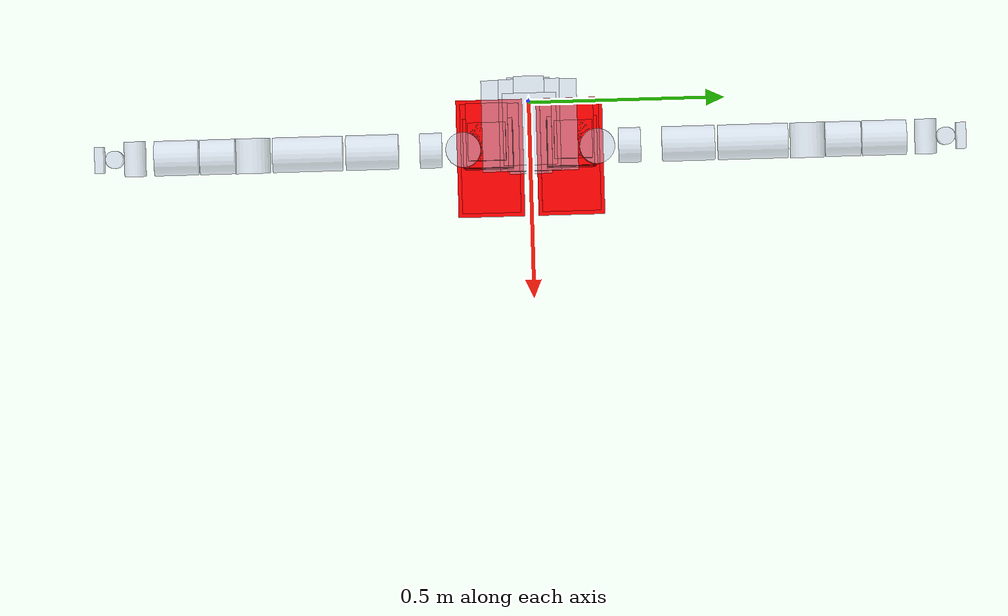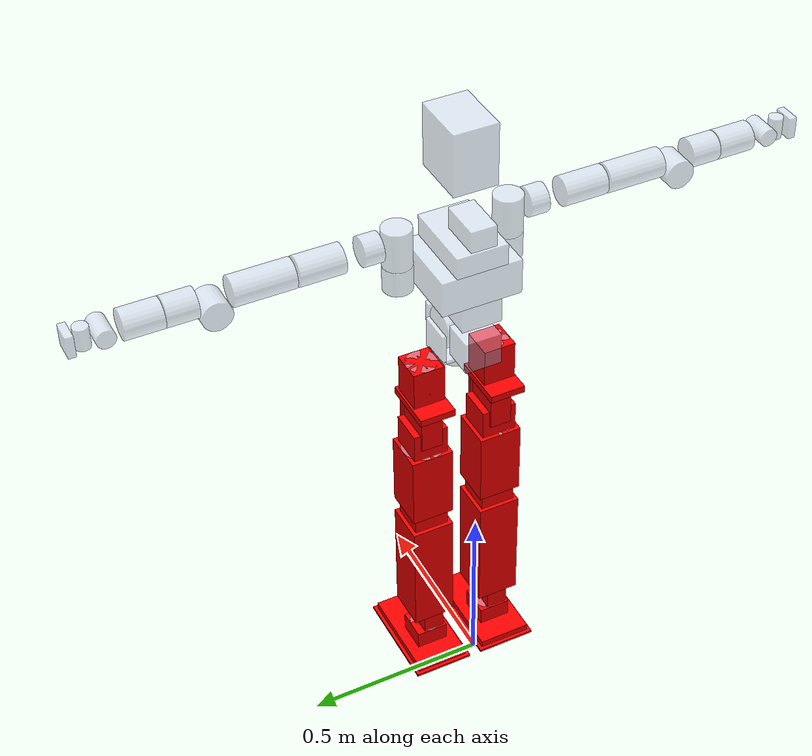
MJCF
<?xml version='1.0' encoding='utf-8'?>
<mujoco model="dyros_tocabi_description">
    <compiler angle="radian" balanceinertia="true" />
    <default>
        <default class="viz">
            <geom contype="0" conaffinity="0" group="1" type="mesh" rgba="1. 0. 0. 1" />
            </default>
        <default class="cls">
            <geom group="2" rgba="0.79216 0.81961 0.93333 0.5" />
            </default>
        <default class="shg20_100_2so">
            <joint />
            </default>
        <default class="shd20_100_2sh">
            <joint />
            </default>
        <default class="shg25_100_2so">
            <joint />
            </default>
        <default class="shg17_100_2so">
            <joint />
            </default>
        <default class="shg14_100_2so">
            <joint />
            </default>
        <default class="csf_11_100_2xh_f">
            <joint />
            </default>
        </default>
    <option timestep="0.0005" />
    <visual>
        <quality shadowsize="4096" />
        <map stiffness="10" znear="0.05" zfar="50"/>
        <global fovy="20" />
    </visual>
    <asset>
        <mesh name="Pelvis_link" file="../meshes/Pelvis_link2.STL" scale="0.001 0.001 0.001" />
        <mesh name="HipRoll_R_link" file="../meshes/HipRoll_R_link.STL" />
        <mesh name="HipCenter_R_Link" file="../meshes/HipCenter_R_Link.STL" />
        <mesh name="Thigh_R_Link" file="../meshes/Thigh_R_Link.STL" />
        <mesh name="Knee_R_Link" file="../meshes/Knee_R_Link.STL" />
        <mesh name="AnkleCenter_R_Link" file="../meshes/AnkleCenter_R_Link.STL" />
        <mesh name="AnkleRoll_R_Link" file="../meshes/AnkleRoll_R_Link.STL" />
        <mesh name="HipRoll_L_Link" file="../meshes/HipRoll_L_Link.STL" />
        <mesh name="HipCenter_L_Link" file="../meshes/HipCenter_L_Link.STL" />
        <mesh name="Thigh_L_Link" file="../meshes/Thigh_L_Link.STL" />
        <mesh name="Knee_L_Link" file="../meshes/Knee_L_Link.STL" />
        <mesh name="AnkleCenter_L_Link" file="../meshes/AnkleCenter_L_Link.STL" />
        <mesh name="AnkleRoll_L_Link" file="../meshes/AnkleRoll_L_Link.STL" />
        <mesh name="waist1" file="../meshes/waistyaw.STL" scale="0.001 0.001 0.001" />
        <mesh name="waist2" file="../meshes/waist2.STL" />
        <mesh name="upperbody" file="../meshes/upperbody.STL" />
        <mesh name="R_shoulder1" file="../meshes/R_shoulder1.STL" />
        <mesh name="R_shoulder2" file="../meshes/R_shoulder2.STL" />
        <mesh name="R_shoulder3" file="../meshes/R_shoulder3.STL" />
        <mesh name="R_arm" file="../meshes/R_arm.STL" />
        <mesh name="R_elbow" file="../meshes/R_elbow.STL" />
        <mesh name="R_forearm" file="../meshes/R_forearm.STL" />
        <mesh name="R_wrist1" file="../meshes/R_wrist1.STL" />
        <mesh name="L_shoulder1" file="../meshes/L_shoulder1.STL" />
        <mesh name="L_shoulder2" file="../meshes/L_shoulder2.STL" />
        <mesh name="L_shoulder3" file="../meshes/L_shoulder3.STL" />
        <mesh name="L_arm" file="../meshes/L_arm.STL" />
        <mesh name="L_elbow" file="../meshes/L_elbow.STL" />
        <mesh name="L_forearm" file="../meshes/L_forearm.STL" />
        <mesh name="L_wrist1" file="../meshes/L_wrist1.STL" />
        <mesh name="neck" file="../meshes/neck.STL" />
        <mesh name="head" file="../meshes/head.STL" scale="0.001 0.001 0.001" />
        <mesh name="hand" file="../meshes/wrist2joint.STL" scale="0.001 0.001 0.001" />
        <mesh name="Foot_Link" file="../meshes/Foot_Link.STL" />

        <texture type="skybox" builtin="gradient" width="128" height="128" rgb1="0.6 0.8 1" rgb2="0.0 0.0 0.0"/>
        <texture name="texplane" type="2d" builtin="checker" rgb1="0.9 0.9 0.9" rgb2="0.7 0.7 0.7" width="512" height="512"/>
        <material name="MatPlane" reflectance="0.9" texture="texplane" texrepeat="5 5" texuniform="true" shininess="1"/>

        <material name="MatPlane2" reflectance="0.3" />
        </asset>
    <worldbody>
        <geom name="ground" type="plane" pos="0 0 0" size="10 10 .05" rgba="0.7 0.6 0.5 1" material="MatPlane" group="3"/>
        <light directional="true" diffuse=".8 .8 .8" pos="0 0 10" dir="0 0 -10"/>
        <light directional="true" diffuse=".5 .5 .5" pos="10 0 0" dir="-10 0 0"/>
        <body euler="0 0 0" name="base_link" pos="0.0 0 0.929869">
            <joint armature="0" damping="0" frictionloss="0" limited="false" name="virtual_joint" stiffness="0" type="free" />
            <inertial fullinertia="0.113284 0.0585 0.1422 -0.000116 -0.0056 -0.0" mass="12.9" pos="0.0585 0.03 0.0431" />
            <geom class="cls" pos="0.11 0.1025 0.05" size="0.045 0.055" type="cylinder" />
            <geom class="viz" pos="0.11 0.1025 0.05" size="0.045 0.045 0.055" type="box" />
            <geom class="cls" pos="0.11 -0.1025 0.05" size="0.045 0.055" type="cylinder" />
            <geom class="viz" pos="0.11 -0.1025 0.05" size="0.045 0.045 0.055" type="box" />
            <site group="4" name="Pelvis_IMU" rgba=".1 .1 .9 1" size="0.005 0.005" type="cylinder" />
            <body name="L_HipRoll_Link" pos="0.11 0.1025 -0.1025">
                <inertial fullinertia="0.01821 0.03121 0.2928 -1.676E-07 -0.0007745 -4.53E-09" mass="2.679" pos="-0.06477 0 0.05149" />
                <joint axis="0 0 1" class="shg20_100_2so" limited="true" name="L_HipYaw_Joint" pos="0 0 0" range="-3.14 3.14" />
                <geom class="cls" pos="-0.016 0 0.085" size="0.077 0.05 0.01" type="box" />
                <geom class="viz" pos="-0.016 0 0.085" size="0.077 0.05 0.01" type="box" />
                <geom class="cls" pos="0.055 0 0.0275" size="0.006 0.036 0.0475" type="box" />
                <geom class="viz" pos="0.055 0 0.0275" size="0.006 0.036 0.0475" type="box" />
                <body name="L_HipCenter_Link" pos="0 0 0">
                    <inertial fullinertia="0.3553 0.009161 0.00876 1.725E-08 -3.236E-06 -4.778E-06" mass="2.67" pos="-0.04801 0.0022 2e-05" />
                    <joint axis="1 0 0" class="shg20_100_2so" limited="true" name="L_HipRoll_Joint" pos="0 0 0" range="-3.14 3.14" />
                    <geom class="viz" pos="-0.0045 0 0" size="0.05225 0.03 0.0475" type="box" />
                    <body name="L_Thigh_Link" pos="0 0 0">
                        <inertial fullinertia="0.0794 0.080 0.009967 4.1E-05 0.000727 -0.001537" mass="5.65" pos="-0.0003 0.00032 -0.247" />
                        <joint axis="0 1 0" class="shg20_100_2so" limited="true" name="L_HipPitch_Joint" pos="0 0 0" range="-3.14 3.14" />
                        <geom class="viz" pos="0 0 -0.175" size="0.049 0.049 0.175" type="box" />
                        <geom class="cls" pos="0 0 -0.1923" size="0.06 0.1085" type="cylinder" />
                        <geom class="viz" pos="0 0 -0.1923" size="0.06 0.06 0.1085" type="box" />
                        <body name="L_Knee_Link" pos="0 0 -0.35">
                            <inertial fullinertia="0.1506 0.5588 0.007451 2.887E-05 0.002607 0.001486" mass="2.614" pos="0.007 0.00214 -0.1686" />
                            <joint axis="0 1 0" class="shg20_100_2so" limited="true" name="L_Knee_Joint" pos="0 0 0" range="-3.14 3.14" />
                            <geom class="viz" pos="0 0 -0.175" size="0.06 0.06 0.175" type="box" />
                            <body name="L_AnkleCenter_Link" pos="0 0 -0.35">
                                <inertial fullinertia="0.003548 0.004046 0.00397 4.0E-06 2.222E-06 5.0E-06" mass="2.833" pos="-0.00228 -0.0006 0.0" />
                                <joint axis="0 1 0" class="shg20_100_2so" limited="true" name="L_AnklePitch_Joint" pos="0 0 0" range="-3.14 3.14" />
                                <geom class="viz" pos="-0.0045 0 -0.010" size="0.05225 0.03 0.0425" type="box" />
                                <body name="L_AnkleRoll_Link" pos="0 0 0">
                                    <inertial fullinertia="0.003951 0.008642 0.007223 2e-05 0.0019 -5.435E-06" mass="2.1" pos="-0.0746 0.0 -0.0096" />
                                    <joint axis="1 0 0" class="shd20_100_2sh" limited="true" name="L_AnkleRoll_Joint" pos="0 0 0" range="-3.14 3.14" />
                                    <body name="L_Foot_Redundant_Link" pos="0 0 0">
                                        <inertial fullinertia=".000001 .000001 .000001 0 0 0" mass="0.00001" pos="-0. 0.0 -0" />
                                        <geom class="cls" pos="0.0 0 -0.10" size="0.045 0.02625" type="cylinder" />
                                        <geom class="cls" pos="0.03 0 -0.141" size="0.14 0.075 0.01" type="box" />
                                        <geom class="viz" pos="0.03 0 -0.141" size="0.14 0.075 0.01" type="box" />
                                        <geom class="viz" pos="0.0 0 -0.10" size="0.045 0.045 0.02625" type="box" />
                                        </body>
                                    <body name="L_Foot_Link" pos="0 0 0">
                                        <inertial fullinertia="0.003386409 0.012600125 0.014296 1.1237E-05 -0.000526477 -1.976E-06" mass="2.35" pos="0.016 0.00008 -0.1206" />
                                        <geom class="cls" pos="0.03 0 -0.155" size="0.15 0.085 0.0035" type="box" />
                                        <geom class="viz" pos="0.03 0 -0.155" size="0.15 0.085 0.0035" type="box" />
                                        </body>
                                    </body>
                                </body>
                            </body>
                        </body>
                    </body>
                </body>
            <body name="R_HipRoll_Link" pos="0.11 -0.1025 -0.1025">
                <inertial fullinertia="0.01821 0.03121 0.2928 -1.676E-07 -0.0007745 -4.53E-09" mass="2.679" pos="-0.06477 0 0.05149" />
                <joint axis="0 0 1" class="shg20_100_2so" limited="true" name="R_HipYaw_Joint" pos="0 0 0" range="-3.14 3.14" />
                <geom class="cls" pos="-0.016 0 0.085" size="0.077 0.05 0.01" type="box" />
                <geom class="viz" pos="-0.016 0 0.085" size="0.077 0.05 0.01" type="box" />
                <geom class="cls" pos="0.055 0 0.0275" size="0.006 0.036 0.0475" type="box" />
                <geom class="viz" pos="0.055 0 0.0275" size="0.006 0.036 0.0475" type="box" />
                <body name="R_HipCenter_Link" pos="0 0 0">
                    <inertial fullinertia="0.3553 0.009161 0.00876 1.725E-08 -3.236E-06 -4.778E-06" mass="2.67" pos="-0.04801 -0.0022 2e-05" />
                    <joint axis="1 0 0" class="shg20_100_2so" limited="true" name="R_HipRoll_Joint" pos="0 0 0" range="-3.14 3.14" />
                    <geom class="viz" pos="-0.0045 0 0" size="0.05225 0.03 0.0475" type="box" />
                    <body name="R_Thigh_Link" pos="0 0 0">
                        <inertial fullinertia="0.0794 0.080 0.009967 4.1E-05 0.000727 0.001537" mass="5.65" pos="-0.0003 -0.00032 -0.247" />
                        <joint axis="0 1 0" class="shg20_100_2so" limited="true" name="R_HipPitch_Joint" pos="0 0 0" range="-3.14 3.14" />
                        <geom class="viz" pos="0 0 -0.175" size="0.049 0.049 0.175" type="box" />
                        <geom class="cls" pos="0 0 -0.1923" size="0.06 0.1085" type="cylinder" />
                        <geom class="viz" pos="0 0 -0.1923" size="0.06 0.06 0.1085" type="box" />
                        <body name="R_Knee_Link" pos="0 0 -0.35">
                            <inertial fullinertia="0.1506 0.5588 0.007451 -2.887E-05 -0.002607 -0.001486" mass="2.614" pos="0.007 0.00214 -0.1686" />
                            <joint axis="0 1 0" class="shg20_100_2so" limited="true" name="R_Knee_Joint" pos="0 0 0" range="-3.14 3.14" />
                            <geom class="viz" pos="0 0 -0.175" size="0.06 0.06 0.175" type="box" />
                            <body name="R_AnkleCenter_Link" pos="0 0 -0.35">
                                <inertial fullinertia="0.003548 0.004046 0.00397 -4.0E-06 -2.222E-06 5.0E-06" mass="2.833" pos="-0.00228 0.0006 0.0" />
                                <joint axis="0 1 0" class="shg20_100_2so" limited="true" name="R_AnklePitch_Joint" pos="0 0 0" range="-3.14 3.14" />
                                <geom class="viz" pos="-0.0045 0 -0.010" size="0.05225 0.03 0.0425" type="box" />
                                <body name="R_AnkleRoll_Link" pos="0 0 0">
                                    <inertial fullinertia="0.003951 0.008642 0.007223 2e-05 0.0019 -5.435E-06" mass="2.1" pos="-0.0746 0.0 -0.0096" />
                                    <joint axis="1 0 0" class="shd20_100_2sh" limited="true" name="R_AnkleRoll_Joint" pos="0 0 0" range="-3.14 3.14" />
                                    <body name="R_Foot_Redundant_Link" pos="0 0 0">
                                        <inertial fullinertia=".000001 .000001 .000001 0 0 0" mass="0.00001" pos="-0. 0.0 -0" />
                                        <geom class="cls" pos="0.0 0 -0.10" size="0.045 0.02625" type="cylinder" />
                                        <geom class="cls" pos="0.03 0 -0.141" size="0.14 0.075 0.01" type="box" />
                                        <geom class="viz" pos="0.03 0 -0.141" size="0.14 0.075 0.01" type="box" />
                                        <geom class="viz" pos="0.0 0 -0.10" size="0.045 0.045 0.02625" type="box" />
                                        </body>
                                    <body name="R_Foot_Link" pos="0 0 0">
                                        <inertial fullinertia="0.003386409 0.012600125 0.014296 1.1237E-05 -0.000526477 -1.976E-06" mass="2.35" pos="0.016 0.00008 -0.1206" />
                                        <geom class="cls" pos="0.03 0 -0.155" size="0.15 0.085 0.0035" type="box" />
                                        <geom class="viz" pos="0.03 0 -0.155" size="0.15 0.085 0.0035" type="box" />
                                        </body>
                                    </body>
                                </body>
                            </body>
                        </body>
                    </body>
                </body>
            <body name="Waist1_Link" pos="0.11 0 0.1979">
                <inertial fullinertia="0.06657 0.02504 0.08023 0.0001591 0.0001333 0.0003246" mass="6.477" pos="-0.033735 0 -0.0386" />
                <joint axis="0 0 1" class="shg25_100_2so" limited="true" name="Waist1_Joint" pos="0 0 0" range="-2.094 2.094" />
                <geom class="cls" pos="0 0 -0.096" size="0.05 0.01" type="cylinder" />
                <geom class="cls" pos="0 0 -0.081" size="0.047 0.065 0.005" type="box" />
                <geom class="cls" pos="0 0.06 -0.0405" size="0.047 0.005 0.0455" type="box" />
                <body name="Waist2_Link" pos="0 0 0">
                    <inertial fullinertia="0.006439 0.007393 0.007618 -1e-05 0.0 -1e-06" mass="3.881" pos="-0.000266 0.009 0" />
                    <joint axis="0 1 0" class="shg25_100_2so" limited="true" name="Waist2_Joint" pos="0 0 0" range="-2.094 2.094" />
                    <geom class="cls" quat="0.707107 0.707107 0 0" size="0.055 0.05" type="cylinder" />
                    <geom class="cls" pos="0.07 0 0" size="0.01 0.05 0.03" type="box" />
                    <geom class="cls" pos="-0.1 0 0" size="0.045 0.05 0.0455" type="box" />
                    <body name="Upperbody_Link" pos="0 0 0">
                        <inertial fullinertia="0.309 0.2935 0.2137 0.000385 -0.0422 0.0005" mass="20.034" pos="-0.0608 0.0017 0.1077" quat="0.999909 -0.000268355 -0.0135223 5.11667e-05" />
                        <joint axis="-1 0 0" class="shg25_100_2so" limited="true" name="Upperbody_Joint" pos="0 0 0" range="-2.094 2.094" />
                        <geom class="cls" pos="-0.03 0 0.2" size="0.105 0.11 0.05" type="box" />
                        <geom class="cls" pos="-0.03 0 0.115" size="0.105 0.055 0.035" type="box" />
                        <geom class="cls" pos="-0.03 0 0.28" size="0.105 0.07 0.03" type="box" />
                        <geom class="cls" pos="-0.08 0 0.35" size="0.06 0.035 0.03" type="box" />
                        <geom class="cls" pos="0.023 0.154 0.185" size="0.04 0.035" type="cylinder" />
                        <geom class="cls" pos="0.023 -0.154 0.185" size="0.04 0.035" type="cylinder" />
                        <body name="L_Shoulder1_Link" pos="0.023 0.154 0.2275">
                            <inertial fullinertia="0.001925606 0.001936576 0.185330098 0.000001433 0.000002313 0.000078962" mass="1.6762" pos="-3e-05 0.00397 0.06029" />
                            <joint axis="0 0 1" class="shg17_100_2so" limited="true" name="L_Shoulder1_Joint" pos="0 0 0" range="-2.09 1.54" />
                            <geom class="cls" pos="0 0 0.05" size="0.04 0.055" type="cylinder" />
                            <body name="L_Shoulder2_Link" pos="0 0.0341 0.065">
                                <inertial fullinertia="0.000989903 0.184275853 0.001067575 0.000028237 -0.000000465 0.000000133" mass="0.4016" pos="0.00107 0.0491 -1e-05" />
                                <joint axis="0 1 0" class="shg17_100_2so" limited="true" name="L_Shoulder2_Joint" pos="0 0 0" range="-3.14159 3.14159" />
                                <geom class="cls" pos="0 0.04 0" quat="0.707107 0.707107 0 0" size="0.04 0.025" type="cylinder" />
                                <body name="L_Shoulder3_Link" pos="0 0.115 0">
                                    <inertial fullinertia="0.192093159 0.002493784 0.008296854 -0.000365084 -0.000002746 -0.000023821" mass="2.90141" pos="0.00262 0.04826 0.00023" />
                                    <joint axis="-1 0 0" class="shg17_100_2so" limited="true" name="L_Shoulder3_Joint" pos="0 0 0" range="-1.9199 1.9199" />
                                    <geom class="cls" pos="0 0.06 0" quat="0.707107 0.707107 0 0" size="0.04 0.06" type="cylinder" />
                                    <body name="L_Armlink_Link" pos="0 0.1281 0">
                                        <inertial fullinertia="0.002878609 0.184381923 0.003117058 0.000302586 -0.000036001 0.000398377" mass="0.58517" pos="-0.01896 0.11642 -0.0119" />
                                        <joint axis="0 1 0" class="shg17_100_2so" limited="true" name="L_Armlink_Joint" pos="0 0 0" range="-3.14159 3.14159" />
                                        <geom class="cls" pos="0 0.08 0" quat="0.707107 0.707107 0 0" size="0.04 0.08" type="cylinder" />
                                        <body name="L_Elbow_Link" pos="0 0.207 -0.0325">
                                            <inertial fullinertia="0.055865466 0.001895543 0.005958821 0.000151764 0.000055158 0.001530917" mass="2.06511" pos="-0.00136 0.05256 0.01764" />
                                            <joint axis="1 0 0" class="shg14_100_2so" limited="true" name="L_Elbow_Joint" pos="0 0 0" range="-3.14159 2.8" />
                                            <geom class="cls" pos="0 0.08 0.0325" quat="0.707107 0.707107 0 0" size="0.04 0.04" type="cylinder" />
                                            <geom class="cls" quat="0.707107 0 0.707107 0" size="0.04 0.04" type="cylinder" />
                                            <body name="L_Forearm_Link" pos="0 0.1244 0.0325">
                                                <inertial fullinertia="0.001053636 0.049889479 0.001266418 0.000084568 0.000022117 0.000019539" mass="0.35234" pos="-0.01426 0.0767 0.00033" />
                                                <joint axis="0 1 0" class="shg14_100_2so" limited="true" name="L_Forearm_Joint" pos="0 0 0" range="-3.14159 3.14159" />
                                                <geom class="cls" pos="0 0.05 0" quat="0.707107 0.707107 0 0" size="0.04 0.05" type="cylinder" />
                                                <geom class="cls" pos="0 0.1451 0" quat="0.707107 0 0.707107 0" size="0.025 0.04" type="cylinder" />
                                                <body name="L_Wrist1_Link" pos="0 0.1451 0">
                                                    <inertial fullinertia="0.015205197 0.000396376 0.000683187 0.000024218 -0.000000263 0.000000688" mass="0.70923" pos="-0.00158 0.02153 3e-05" />
                                                    <joint axis="1 0 0" class="csf_11_100_2xh_f" limited="true" name="L_Wrist1_Joint" pos="0 0 0" range="-3.14159 3.14159" />
                                                    <geom class="cls" pos="0 0.046 0" size="0.02 0.03" type="cylinder" />
                                                    <body name="L_Wrist2_Link" pos="0 0.046 0" quat="0 0 -0.707107 0.707107">
                                                        <inertial fullinertia="0.000865450 0.000696917 0.015377823 0 0 0" mass="0.1" pos="0.00063 0.0636 0.00178" />
                                                        <joint axis="0 1 0" class="csf_11_100_2xh_f" limited="true" name="L_Wrist2_Joint" pos="0 0 0" range="-2.094 2.094" />
                                                        <geom class="cls" pos="0 0 -0.035" size="0.03 0.03 0.01" type="box" />
                                                        </body>
                                                    </body>
                                                </body>
                                            </body>
                                        </body>
                                    </body>
                                </body>
                            </body>
                        <body name="Neck_Link" pos="-0.036 0 0.3795">
                            <inertial fullinertia="0.000058259 0.000036489 0.000058237 -0.000000076 0.000000268 -0.000001002" mass="0.404" pos="-0.0004 -0.002 0.02576" />
                            <joint axis="0 0 1" class="csf_11_100_2xh_f" limited="true" name="Neck_Joint" pos="0 0 0" range="-1.54 1.54" />
                            <body name="Head_Link" pos="0 0 0.0275">
                                <inertial fullinertia="0.0079 0.012 0.01 0.0 0.0025 0.0" mass="1.417" pos="0.0372 0 0.0708" />
                                <joint axis="0 1 0" class="csf_11_100_2xh_f" limited="true" name="Head_Joint" pos="0 0 0" range="-1.54 1.54" />
                                <geom class="cls" pos="0.02 0 0.14" size="0.08 0.06 0.086" type="box" />
                                </body>
                            </body>
                        <body name="R_Shoulder1_Link" pos="0.023 -0.154 0.2275">
                            <inertial fullinertia="0.001925606 0.001936576 0.185330098 -0.000001433 0.000002313 -0.000078962" mass="1.6762" pos="-3e-05 -0.00397 0.06029" />
                            <joint axis="0 0 1" class="shg17_100_2so" limited="true" name="R_Shoulder1_Joint" pos="0 0 0" range="-1.54 2.09" />
                            <geom class="cls" pos="0 0 0.05" size="0.04 0.055" type="cylinder" />
                            <body name="R_Shoulder2_Link" pos="0 -0.0341 0.065">
                                <inertial fullinertia="0.000989903 0.184275853 0.001067575 -0.000028237 -0.000000465 -0.000000133" mass="0.4016" pos="0.00107 -0.0491 -1e-05" />
                                <joint axis="0 -1 0" class="shg17_100_2so" limited="true" name="R_Shoulder2_Joint" pos="0 0 0" range="-3.14159 3.14159" />
                                <geom class="cls" pos="0 -0.04 0" quat="0.707107 0.707107 0 0" size="0.04 0.025" type="cylinder" />
                                <body name="R_Shoulder3_Link" pos="0 -0.115 0">
                                    <inertial fullinertia="0.192093159 0.002493784 0.008296854 0.000365084 -0.000002746 0.000023821" mass="2.90141" pos="0.00262 -0.04826 0.00023" />
                                    <joint axis="-1 0 0" class="shg17_100_2so" limited="true" name="R_Shoulder3_Joint" pos="0 0 0" range="-1.9199 1.9199" />
                                    <geom class="cls" pos="0 -0.06 0" quat="0.707107 0.707107 0 0" size="0.04 0.06" type="cylinder" />
                                    <body name="R_Armlink_Link" pos="0 -0.1281 0">
                                        <inertial fullinertia="0.002878609 0.184381923 0.003117058 -0.000302586 -0.000036001 -0.000398377" mass="0.58517" pos="-0.01896 -0.11642 -0.0119" />
                                        <joint axis="0 -1 0" class="shg17_100_2so" limited="true" name="R_Armlink_Joint" pos="0 0 0" range="-3.14159 3.14159" />
                                        <geom class="cls" pos="0 -0.08 0" quat="0.707107 0.707107 0 0" size="0.04 0.08" type="cylinder" />
                                        <body name="R_Elbow_Link" pos="0 -0.207 -0.0325">
                                            <inertial fullinertia="0.055865466 0.001895543 0.005958821 -0.000151764 0.000055158 -0.001530917" mass="2.06511" pos="-0.00136 -0.05256 0.01764" />
                                            <joint axis="1 0 0" class="shg14_100_2so" limited="true" name="R_Elbow_Joint" pos="0 0 0" range="-2.967 3.14159" />
                                            <geom class="cls" pos="0 -0.08 0.0325" quat="0.707107 0.707107 0 0" size="0.04 0.04" type="cylinder" />
                                            <geom class="cls" quat="0.707107 0 0.707107 0" size="0.04 0.04" type="cylinder" />
                                            <body name="R_Forearm_Link" pos="0 -0.1244 0.0325">
                                                <inertial fullinertia="0.001053636 0.049889479 0.001266418 -0.000084568 0.000022117 -0.000019539" mass="0.35234" pos="-0.01426 -0.0767 0.00033" />
                                                <joint axis="0 -1 0" class="shg14_100_2so" limited="true" name="R_Forearm_Joint" pos="0 0 0" range="-3.14159 3.14159" />
                                                <geom class="cls" pos="0 -0.05 0" quat="0.707107 0.707107 0 0" size="0.04 0.05" type="cylinder" />
                                                <geom class="cls" pos="0 -0.1451 0" quat="0.707107 0 0.707107 0" size="0.025 0.04" type="cylinder" />
                                                <body name="R_Wrist1_Link" pos="0 -0.1451 0">
                                                    <inertial fullinertia="0.015205197 0.000396376 0.000683187 -0.000024218 -0.000000263 -0.000000688" mass="0.70923" pos="-0.00158 -0.02153 3e-05" />
                                                    <joint axis="1 0 0" class="csf_11_100_2xh_f" limited="true" name="R_Wrist1_Joint" pos="0 0 0" range="-3.14159 3.14159" />
                                                    <geom class="cls" pos="0 -0.046 0" size="0.02 0.03" type="cylinder" />
                                                    <body name="R_Wrist2_Link" pos="0 -0.046 0" quat="0 0 0.707107 0.707107">
                                                        <inertial fullinertia="0.000865450 0.000696917 0.015377823 0 0 0" mass="0.1" pos="0.00063 -0.0636 0.00178" quat="0.5 0.5 -0.5 0.5" />
                                                        <joint axis="0 -1 0" class="csf_11_100_2xh_f" limited="true" name="R_Wrist2_Joint" pos="0 0 0" range="-2.094 2.094" />
                                                        <geom class="cls" pos="0 0 -0.035" size="0.03 0.03 0.01" type="box" />
                                                        </body>
                                                    </body>
                                                </body>
                                            </body>
                                        </body>
                                    </body>
                                </body>
                            </body>
                        </body>
                    </body>
                </body>
            </body>
        </worldbody>
    <actuator>
        <motor name="L_HipYaw_Motor" joint="L_HipYaw_Joint" ctrlrange="-333 333" />
        <motor name="L_HipRoll_Motor" joint="L_HipRoll_Joint" ctrlrange="-232 232" />
        <motor name="L_HipPitch_Motor" joint="L_HipPitch_Joint" ctrlrange="-263 263" />
        <motor name="L_Knee_Motor" joint="L_Knee_Joint" ctrlrange="-289 289" />
        <motor name="L_AnklePitch_Motor" joint="L_AnklePitch_Joint" ctrlrange="-222 222" />
        <motor name="L_AnkleRoll_Motor" joint="L_AnkleRoll_Joint" ctrlrange="-166 166" />
        <motor name="R_HipYaw_Motor" joint="R_HipYaw_Joint" ctrlrange="-333 333" />
        <motor name="R_HipRoll_Motor" joint="R_HipRoll_Joint" ctrlrange="-232 232" />
        <motor name="R_HipPitch_Motor" joint="R_HipPitch_Joint" ctrlrange="-263 263" />
        <motor name="R_Knee_Motor" joint="R_Knee_Joint" ctrlrange="-289 289" />
        <motor name="R_AnklePitch_Motor" joint="R_AnklePitch_Joint" ctrlrange="-222 222" />
        <motor name="R_AnkleRoll_Motor" joint="R_AnkleRoll_Joint" ctrlrange="-166 166" />
        <motor name="Waist1_Motor" joint="Waist1_Joint" ctrlrange="-303 303" />
        <motor name="Waist2_Motor" joint="Waist2_Joint" ctrlrange="-303 303" />
        <motor name="Upperbody_Motor" joint="Upperbody_Joint" ctrlrange="-303 303" />
        <motor name="L_Shoulder1_Motor" joint="L_Shoulder1_Joint" ctrlrange="-64 64" />
        <motor name="L_Shoulder2_Motor" joint="L_Shoulder2_Joint" ctrlrange="-64 64" />
        <motor name="L_Shoulder3_Motor" joint="L_Shoulder3_Joint" ctrlrange="-64 64" />
        <motor name="L_Armlink_Motor" joint="L_Armlink_Joint" ctrlrange="-64 64" />
        <motor name="L_Elbow_Motor" joint="L_Elbow_Joint" ctrlrange="-23 23" />
        <motor name="L_Forearm_Motor" joint="L_Forearm_Joint" ctrlrange="-23 23" />
        <motor name="L_Wrist1_Motor" joint="L_Wrist1_Joint" ctrlrange="-10 10" />
        <motor name="L_Wrist2_Motor" joint="L_Wrist2_Joint" ctrlrange="-10 10" />
        <motor name="Neck_Motor" joint="Neck_Joint" ctrlrange="-10 10" />
        <motor name="Head_Motor" joint="Head_Joint" ctrlrange="-10 10" />
        <motor name="R_Shoulder1_Motor" joint="R_Shoulder1_Joint" ctrlrange="-64 64" />
        <motor name="R_Shoulder2_Motor" joint="R_Shoulder2_Joint" ctrlrange="-64 64" />
        <motor name="R_Shoulder3_Motor" joint="R_Shoulder3_Joint" ctrlrange="-64 64" />
        <motor name="R_Armlink_Motor" joint="R_Armlink_Joint" ctrlrange="-64 64" />
        <motor name="R_Elbow_Motor" joint="R_Elbow_Joint" ctrlrange="-23 23" />
        <motor name="R_Forearm_Motor" joint="R_Forearm_Joint" ctrlrange="-23 23" />
        <motor name="R_Wrist1_Motor" joint="R_Wrist1_Joint" ctrlrange="-10 10" />
        <motor name="R_Wrist2_Motor" joint="R_Wrist2_Joint" ctrlrange="-10 10" />
        </actuator>

        <keyframe>
        <!-- Initial Position Setting 0.94783-->

        <key name="front" time="0" qpos ="0 0 0.92983 1 0 0 0
								0.0 0.0 -0.24 0.6 -0.36 0.0
								0.0 0.0 -0.24 0.6 -0.36 0.0
								0 0 0
								0.3 0.3 1.5 -1.27 -1 0 -1 0
                                0 0
								-0.3 -0.3 -1.5 1.27 1 0 1 0"/>

        <key name="side" time="0" qpos ="0 0 0.92683 0.8660254 0 0 0.5
								0.0 0.1 -0.45 1.0 -0.55 -0.1
								0.0 -0.1 -0.45 1.0 -0.55 0.1
								0 0 0
								0.2 0.3 1.5 -1.27 -1 0 -1 0
                                0 0
								-0.2 -0.3 -1.5 1.27 1 0 1 0"/>
    </keyframe>
</mujoco>
